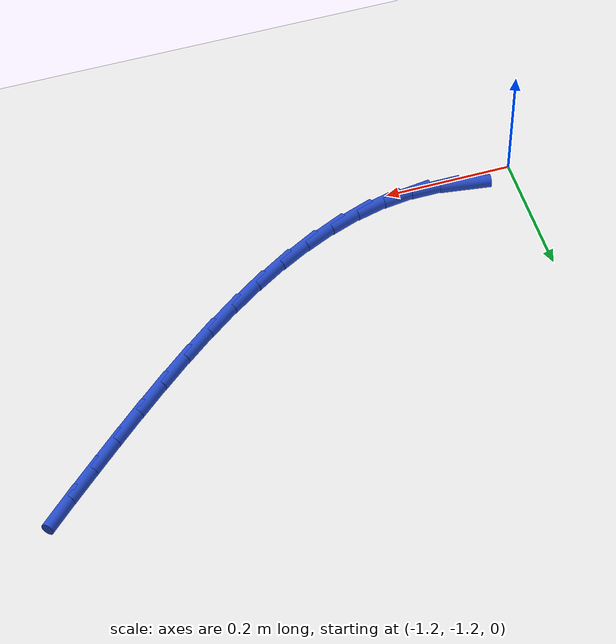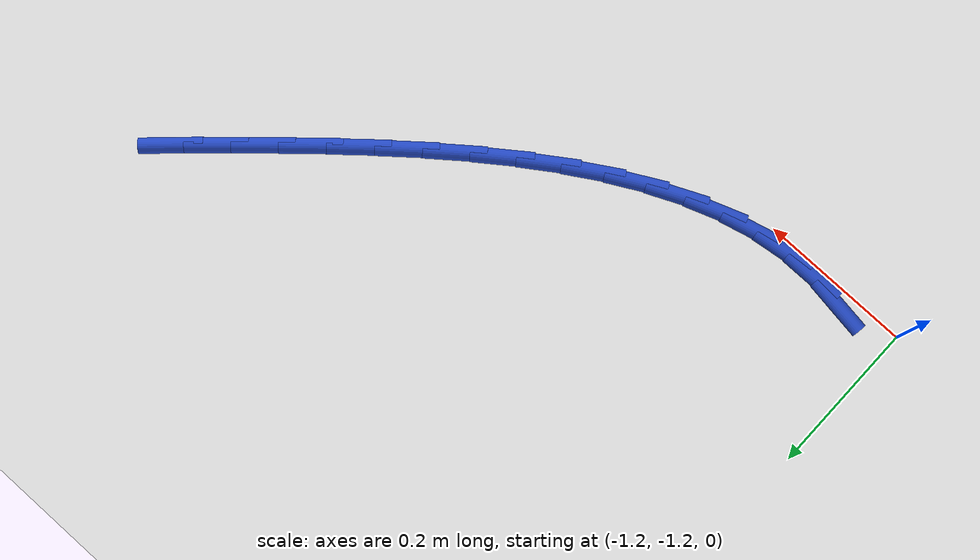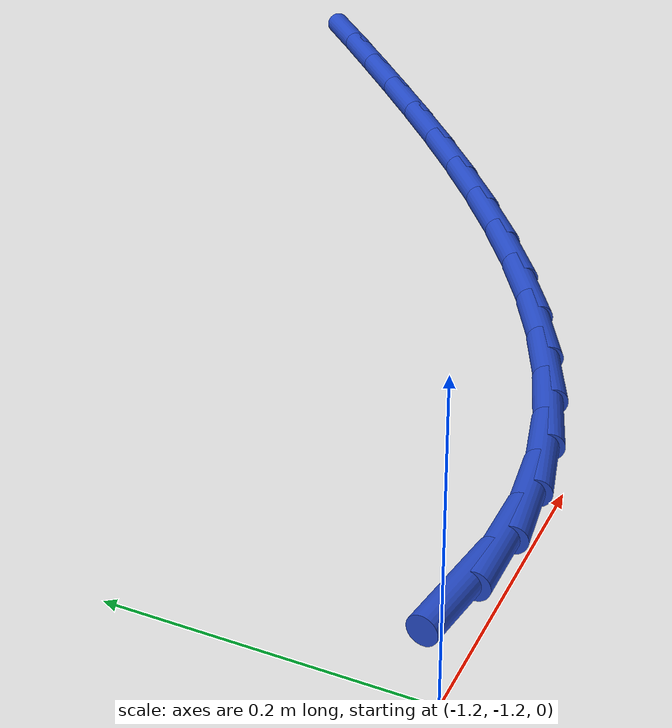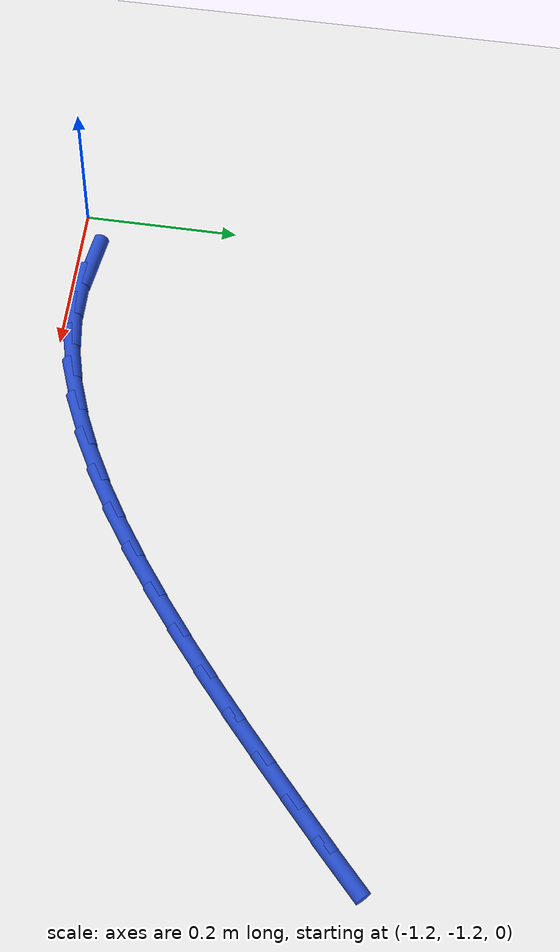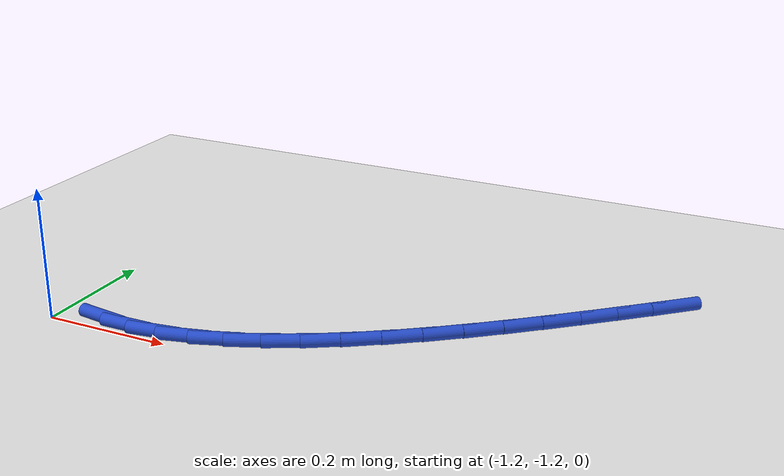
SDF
<sdf version="1.6">
 <world name="default">
  <model name="ground_plane">
   <static>1</static>
   <link name="link">
    <collision name="collision">
     <geometry><plane><normal>0 0 1</normal><size>100 100</size></plane></geometry>
     <surface><friction><ode><mu>100</mu><mu2>50</mu2></ode></friction></surface>
    </collision>
    <visual name="visual">
     <cast_shadows>0</cast_shadows>
     <geometry><plane><normal>0 0 1</normal><size>100 100</size></plane></geometry>
     <material>
      <script><uri>file://media/materials/scripts/gazebo.material</uri><name>Gazebo/WhiteGlow</name></script>
     </material>
    </visual>
   </link>
  </model>
  <model name="line">
   <link name="link_97">
    <pose>-1.120824255531778 -1.1794022679665088 0.01 0 1.57 -0.13953912816678496</pose>
    <collision name="collision">
     <geometry><cylinder><radius>0.01</radius><length>0.08</length></cylinder></geometry>
    </collision>
    <visual name="visual">
     <material>
      <script><name>Gazebo/Blue</name><uri>file://media/materials/scripts/gazebo.material</uri></script>
     </material>
     <geometry><cylinder><radius>0.01</radius><length>0.08</length></cylinder></geometry>
    </visual>
   </link>
   <link name="link_98">
    <pose>-1.0743733298983833 -1.1859263887847784 0.01 0 1.57 0.00480499112317222</pose>
    <collision name="collision">
     <geometry><cylinder><radius>0.01</radius><length>0.08</length></cylinder></geometry>
    </collision>
    <visual name="visual">
     <material>
      <script><name>Gazebo/Blue</name><uri>file://media/materials/scripts/gazebo.material</uri></script>
     </material>
     <geometry><cylinder><radius>0.01</radius><length>0.08</length></cylinder></geometry>
    </visual>
   </link>
   <link name="link_99">
    <pose>-1.0273869814878918 -1.185700618060226 0.01 0 1.57 0.13492376186792313</pose>
    <collision name="collision">
     <geometry><cylinder><radius>0.01</radius><length>0.08</length></cylinder></geometry>
    </collision>
    <visual name="visual">
     <material>
      <script><name>Gazebo/Blue</name><uri>file://media/materials/scripts/gazebo.material</uri></script>
     </material>
     <geometry><cylinder><radius>0.01</radius><length>0.08</length></cylinder></geometry>
    </visual>
   </link>
   <link name="link_100">
    <pose>-0.9799868102489014 -1.179266115710155 0.01 0 1.57 0.24848866707921555</pose>
    <collision name="collision">
     <geometry><cylinder><radius>0.01</radius><length>0.08</length></cylinder></geometry>
    </collision>
    <visual name="visual">
     <material>
      <script><name>Gazebo/Blue</name><uri>file://media/materials/scripts/gazebo.material</uri></script>
     </material>
     <geometry><cylinder><radius>0.01</radius><length>0.08</length></cylinder></geometry>
    </visual>
   </link>
   <link name="link_101">
    <pose>-0.9322946423789957 -1.1671650546208228 0.01 0 1.57 0.34546319205917564</pose>
    <collision name="collision">
     <geometry><cylinder><radius>0.01</radius><length>0.08</length></cylinder></geometry>
    </collision>
    <visual name="visual">
     <material>
      <script><name>Gazebo/Blue</name><uri>file://media/materials/scripts/gazebo.material</uri></script>
     </material>
     <geometry><cylinder><radius>0.01</radius><length>0.08</length></cylinder></geometry>
    </visual>
   </link>
   <link name="link_102">
    <pose>-0.8844323040757597 -1.1499396076784865 0.01 0 1.57 0.42714764603056793</pose>
    <collision name="collision">
     <geometry><cylinder><radius>0.01</radius><length>0.08</length></cylinder></geometry>
    </collision>
    <visual name="visual">
     <material>
      <script><name>Gazebo/Blue</name><uri>file://media/materials/scripts/gazebo.material</uri></script>
     </material>
     <geometry><cylinder><radius>0.01</radius><length>0.08</length></cylinder></geometry>
    </visual>
   </link>
   <link name="link_103">
    <pose>-0.83652162153678 -1.1281319477694043 0.01 0 1.57 0.4953859002197632</pose>
    <collision name="collision">
     <geometry><cylinder><radius>0.01</radius><length>0.08</length></cylinder></geometry>
    </collision>
    <visual name="visual">
     <material>
      <script><name>Gazebo/Blue</name><uri>file://media/materials/scripts/gazebo.material</uri></script>
     </material>
     <geometry><cylinder><radius>0.01</radius><length>0.08</length></cylinder></geometry>
    </visual>
   </link>
   <link name="link_104">
    <pose>-0.7886844209596409 -1.1022842477798331 0.01 0 1.57 0.5520732358999487</pose>
    <collision name="collision">
     <geometry><cylinder><radius>0.01</radius><length>0.08</length></cylinder></geometry>
    </collision>
    <visual name="visual">
     <material>
      <script><name>Gazebo/Blue</name><uri>file://media/materials/scripts/gazebo.material</uri></script>
     </material>
     <geometry><cylinder><radius>0.01</radius><length>0.08</length></cylinder></geometry>
    </visual>
   </link>
   <link name="link_105">
    <pose>-0.741042528541928 -1.0729386805960313 0.01 0 1.57 0.5989146658406157</pose>
    <collision name="collision">
     <geometry><cylinder><radius>0.01</radius><length>0.08</length></cylinder></geometry>
    </collision>
    <visual name="visual">
     <material>
      <script><name>Gazebo/Blue</name><uri>file://media/materials/scripts/gazebo.material</uri></script>
     </material>
     <geometry><cylinder><radius>0.01</radius><length>0.08</length></cylinder></geometry>
    </visual>
   </link>
   <link name="link_106">
    <pose>-0.6937177704812261 -1.0406374191042556 0.01 0 1.57 0.6373361622549507</pose>
    <collision name="collision">
     <geometry><cylinder><radius>0.01</radius><length>0.08</length></cylinder></geometry>
    </collision>
    <visual name="visual">
     <material>
      <script><name>Gazebo/Blue</name><uri>file://media/materials/scripts/gazebo.material</uri></script>
     </material>
     <geometry><cylinder><radius>0.01</radius><length>0.08</length></cylinder></geometry>
    </visual>
   </link>
   <link name="link_107">
    <pose>-0.6468319729751202 -1.0059226361907632 0.01 0 1.57 0.6684723035200804</pose>
    <collision name="collision">
     <geometry><cylinder><radius>0.01</radius><length>0.08</length></cylinder></geometry>
    </collision>
    <visual name="visual">
     <material>
      <script><name>Gazebo/Blue</name><uri>file://media/materials/scripts/gazebo.material</uri></script>
     </material>
     <geometry><cylinder><radius>0.01</radius><length>0.08</length></cylinder></geometry>
    </visual>
   </link>
   <link name="link_108">
    <pose>-0.6005069622211961 -0.9693365047418122 0.01 0 1.57 0.6931843318707196</pose>
    <collision name="collision">
     <geometry><cylinder><radius>0.01</radius><length>0.08</length></cylinder></geometry>
    </collision>
    <visual name="visual">
     <material>
      <script><name>Gazebo/Blue</name><uri>file://media/materials/scripts/gazebo.material</uri></script>
     </material>
     <geometry><cylinder><radius>0.01</radius><length>0.08</length></cylinder></geometry>
    </visual>
   </link>
   <link name="link_109">
    <pose>-0.5548645644170391 -0.9314211976436604 0.01 0 1.57 0.71208439373445</pose>
    <collision name="collision">
     <geometry><cylinder><radius>0.01</radius><length>0.08</length></cylinder></geometry>
    </collision>
    <visual name="visual">
     <material>
      <script><name>Gazebo/Blue</name><uri>file://media/materials/scripts/gazebo.material</uri></script>
     </material>
     <geometry><cylinder><radius>0.01</radius><length>0.08</length></cylinder></geometry>
    </visual>
   </link>
   <link name="link_110">
    <pose>-0.5100266057602335 -0.8927188877825641 0.01 0 1.57 0.7255539029997107</pose>
    <collision name="collision">
     <geometry><cylinder><radius>0.01</radius><length>0.08</length></cylinder></geometry>
    </collision>
    <visual name="visual">
     <material>
      <script><name>Gazebo/Blue</name><uri>file://media/materials/scripts/gazebo.material</uri></script>
     </material>
     <geometry><cylinder><radius>0.01</radius><length>0.08</length></cylinder></geometry>
    </visual>
   </link>
   <link name="link_111">
    <pose>-0.4661149124483659 -0.8537717480447824 0.01 0 1.57 0.7337660020806872</pose>
    <collision name="collision">
     <geometry><cylinder><radius>0.01</radius><length>0.08</length></cylinder></geometry>
    </collision>
    <visual name="visual">
     <material>
      <script><name>Gazebo/Blue</name><uri>file://media/materials/scripts/gazebo.material</uri></script>
     </material>
     <geometry><cylinder><radius>0.01</radius><length>0.08</length></cylinder></geometry>
    </visual>
   </link>
   <link name="link_112">
    <pose>-0.42325139078527474 -0.8151207416623811 0.01 0 1.57 0.7400044202083828</pose>
    <collision name="collision">
     <geometry><cylinder><radius>0.01</radius><length>0.08</length></cylinder></geometry>
    </collision>
    <visual name="visual">
     <material>
      <script><name>Gazebo/Blue</name><uri>file://media/materials/scripts/gazebo.material</uri></script>
     </material>
     <geometry><cylinder><radius>0.01</radius><length>0.08</length></cylinder></geometry>
    </visual>
   </link>
   <link name="link_113">
    <pose>-0.3815739505536815 -0.7770651693962368 0.01 0 1.57 0.7517582344880538</pose>
    <collision name="collision">
     <geometry><cylinder><radius>0.01</radius><length>0.08</length></cylinder></geometry>
    </collision>
    <visual name="visual">
     <material>
      <script><name>Gazebo/Blue</name><uri>file://media/materials/scripts/gazebo.material</uri></script>
     </material>
     <geometry><cylinder><radius>0.01</radius><length>0.08</length></cylinder></geometry>
    </visual>
   </link>
  </model>
 </world>
</sdf>
